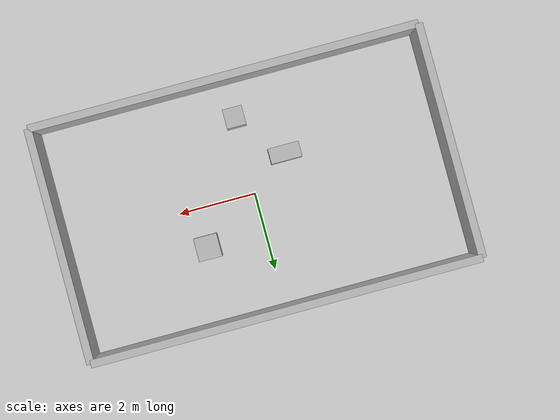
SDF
<?xml version="1.0" ?>
<sdf version="1.7">
  <world name="arena">

    <include>
      <uri>https://fuel.gazebosim.org/1.0/OpenRobotics/models/Ground Plane</uri>
    </include>

    <include>
      <uri>https://fuel.gazebosim.org/1.0/OpenRobotics/models/Sun</uri>
    </include>

    <!-- ===== Walls (10m x 6m arena) ===== -->
    <!-- Wall thickness -->
    <!-- Arena centered at (0,0). -->

    <!-- North wall (y = +3) -->
    <model name="wall_north">
      <static>true</static>
      <pose>0 3 0.5 0 0 0</pose>
      <link name="link">
        <collision name="col">
          <geometry><box><size>10 0.2 1</size></box></geometry>
        </collision>
        <visual name="vis">
          <geometry><box><size>10 0.2 1</size></box></geometry>
        </visual>
      </link>
    </model>

    <!-- South wall (y = -3) -->
    <model name="wall_south">
      <static>true</static>
      <pose>0 -3 0.5 0 0 0</pose>
      <link name="link">
        <collision name="col">
          <geometry><box><size>10 0.2 1</size></box></geometry>
        </collision>
        <visual name="vis">
          <geometry><box><size>10 0.2 1</size></box></geometry>
        </visual>
      </link>
    </model>

    <!-- East wall (x = +5) -->
    <model name="wall_east">
      <static>true</static>
      <pose>5 0 0.5 0 0 0</pose>
      <link name="link">
        <collision name="col">
          <geometry><box><size>0.2 6 1</size></box></geometry>
        </collision>
        <visual name="vis">
          <geometry><box><size>0.2 6 1</size></box></geometry>
        </visual>
      </link>
    </model>

    <!-- West wall (x = -5) -->
    <model name="wall_west">
      <static>true</static>
      <pose>-5 0 0.5 0 0 0</pose>
      <link name="link">
        <collision name="col">
          <geometry><box><size>0.2 6 1</size></box></geometry>
        </collision>
        <visual name="vis">
          <geometry><box><size>0.2 6 1</size></box></geometry>
        </visual>
      </link>
    </model>

    <!-- ===== Obstacles (boxes) ===== -->
    <model name="box_1">
      <static>true</static>
      <pose>1.5 1.0 0.25 0 0 0</pose>
      <link name="link">
        <collision name="col">
          <geometry><box><size>0.6 0.6 0.5</size></box></geometry>
        </collision>
        <visual name="vis">
          <geometry><box><size>0.6 0.6 0.5</size></box></geometry>
        </visual>
      </link>
    </model>

    <model name="box_2">
      <static>true</static>
      <pose>-1.0 -0.8 0.25 0 0 0</pose>
      <link name="link">
        <collision name="col">
          <geometry><box><size>0.8 0.4 0.5</size></box></geometry>
        </collision>
        <visual name="vis">
          <geometry><box><size>0.8 0.4 0.5</size></box></geometry>
        </visual>
      </link>
    </model>

    <model name="box_3">
      <static>true</static>
      <pose>0.0 -2.0 0.25 0 0 0</pose>
      <link name="link">
        <collision name="col">
          <geometry><box><size>0.5 0.5 0.5</size></box></geometry>
        </collision>
        <visual name="vis">
          <geometry><box><size>0.5 0.5 0.5</size></box></geometry>
        </visual>
      </link>
    </model>

  </world>
</sdf>
